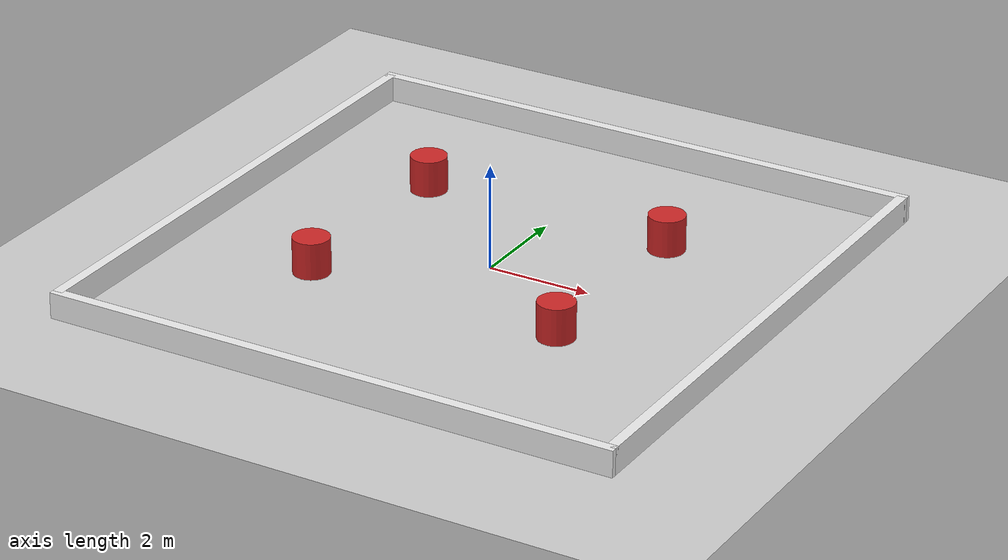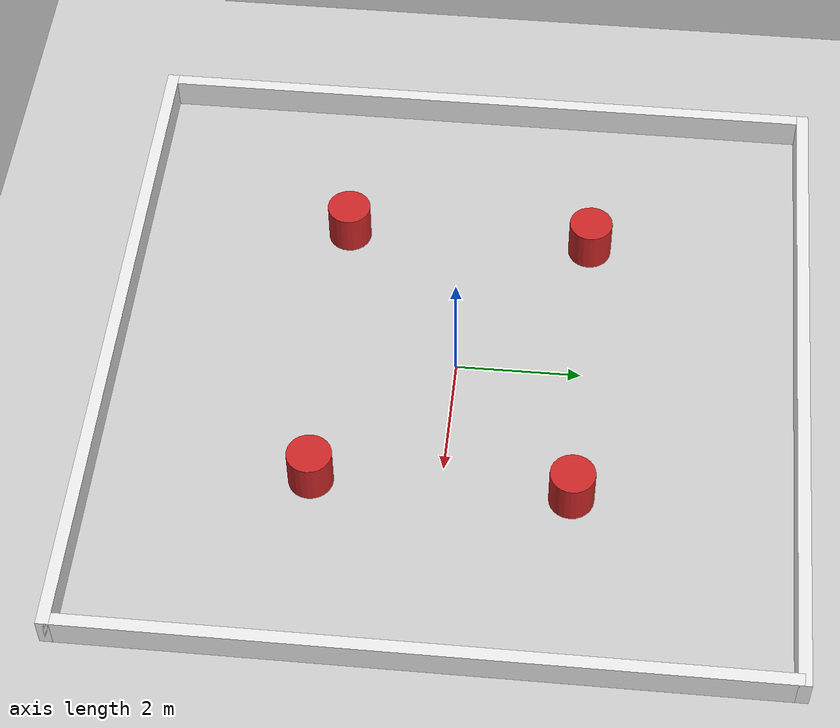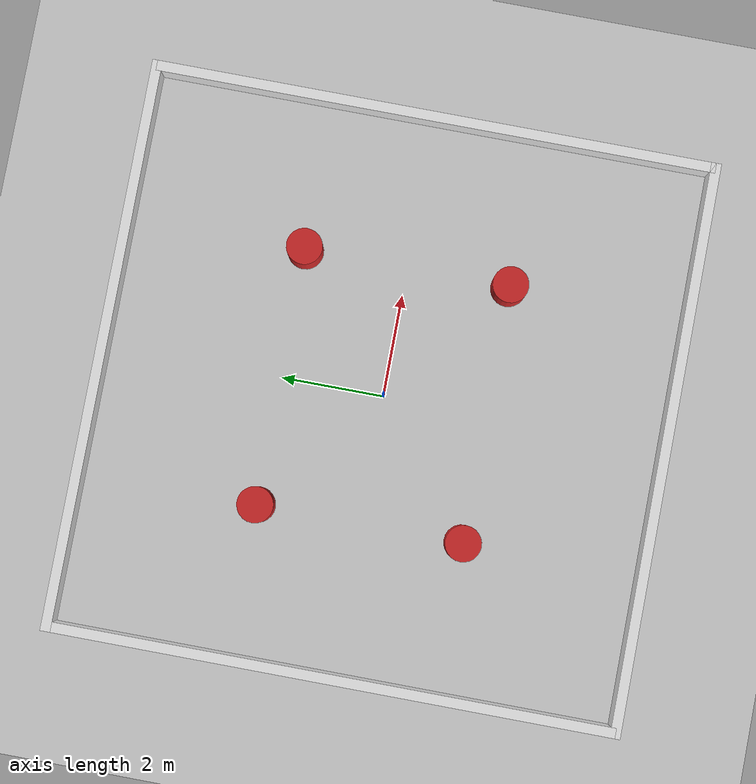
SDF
<?xml version="1.0"?>
<sdf version="1.6">
  <world name="default">
<plugin name="gazebo_ros_state" filename="libgazebo_ros_state.so">
      <ros>
        <namespace>/gazebo</namespace>
      </ros>
    </plugin>

    <include>
      <uri>model://sun</uri>
    </include>
    <include>
      <uri>model://ground_plane</uri>
    </include>
    <physics type="ode">
      <real_time_update_rate>100</real_time_update_rate>
      <max_step_size>0.01</max_step_size>
      <real_time_factor>0</real_time_factor>
    </physics>

    <model name="wall_top">
      <pose>0 5.5 0.25 0 0 0</pose>
      <static>true</static>
      <link name="link">
        <collision name="col">
          <geometry>
            <box>
              <size>11.2 0.2 0.5</size>
            </box>
          </geometry>
        </collision>
        <visual name="vis">
          <geometry>
            <box>
              <size>11.2 0.2 0.5</size>
            </box>
          </geometry>
          <material>
            <script>
              <uri>file://media/materials/scripts/gazebo.material</uri>
              <name>Gazebo/White</name>
            </script>
          </material>
        </visual>
      </link>
    </model>

    <model name="wall_bottom">
      <pose>0 -5.5 0.25 0 0 0</pose>
      <static>true</static>
      <link name="link">
        <collision name="col">
          <geometry>
            <box>
              <size>11.2 0.2 0.5</size>
            </box>
          </geometry>
        </collision>
        <visual name="vis">
          <geometry>
            <box>
              <size>11.2 0.2 0.5</size>
            </box>
          </geometry>
          <material>
            <script>
              <uri>file://media/materials/scripts/gazebo.material</uri>
              <name>Gazebo/White</name>
            </script>
          </material>
        </visual>
      </link>
    </model>

    <model name="wall_left">
      <pose>5.5 0 0.25 0 0 0</pose>
      <static>true</static>
      <link name="link">
        <collision name="col">
          <geometry>
            <box>
              <size>0.2 11.0 0.5</size>
            </box>
          </geometry>
        </collision>
        <visual name="vis">
          <geometry>
            <box>
              <size>0.2 11.0 0.5</size>
            </box>
          </geometry>
          <material>
            <script>
              <uri>file://media/materials/scripts/gazebo.material</uri>
              <name>Gazebo/White</name>
            </script>
          </material>
        </visual>
      </link>
    </model>

    <model name="wall_right">
      <pose>-5.5 0 0.25 0 0 0</pose>
      <static>true</static>
      <link name="link">
        <collision name="col">
          <geometry>
            <box>
              <size>0.2 11.0 0.5</size>
            </box>
          </geometry>
        </collision>
        <visual name="vis">
          <geometry>
            <box>
              <size>0.2 11.0 0.5</size>
            </box>
          </geometry>
          <material>
            <script>
              <uri>file://media/materials/scripts/gazebo.material</uri>
              <name>Gazebo/White</name>
            </script>
          </material>
        </visual>
      </link>
    </model>

    <model name="obs_1">
      <pose>2.5 2.0 0.5 0 0 0</pose>
      <static>true</static>
      <link name="link">
        <collision name="col">
          <geometry>
            <cylinder>
              <radius>0.35</radius>
              <length>0.7</length>
            </cylinder>
          </geometry>
        </collision>
        <visual name="vis">
          <geometry>
            <cylinder>
              <radius>0.35</radius>
              <length>0.7</length>
            </cylinder>
          </geometry>
          <material>
            <script>
              <uri>file://media/materials/scripts/gazebo.material</uri>
              <name>Gazebo/Red</name>
            </script>
          </material>
        </visual>
      </link>
    </model>

    <model name="obs_2">
      <pose>2.5 -2.0 0.5 0 0 0</pose>
      <static>true</static>
      <link name="link">
        <collision name="col">
          <geometry>
            <cylinder>
              <radius>0.35</radius>
              <length>0.7</length>
            </cylinder>
          </geometry>
        </collision>
        <visual name="vis">
          <geometry>
            <cylinder>
              <radius>0.35</radius>
              <length>0.7</length>
            </cylinder>
          </geometry>
          <material>
            <script>
              <uri>file://media/materials/scripts/gazebo.material</uri>
              <name>Gazebo/Red</name>
            </script>
          </material>
        </visual>
      </link>
    </model>

    <model name="obs_3">
      <pose>-2.5 2.0 0.5 0 0 0</pose>
      <static>true</static>
      <link name="link">
        <collision name="col">
          <geometry>
            <cylinder>
              <radius>0.35</radius>
              <length>0.7</length>
            </cylinder>
          </geometry>
        </collision>
        <visual name="vis">
          <geometry>
            <cylinder>
              <radius>0.35</radius>
              <length>0.7</length>
            </cylinder>
          </geometry>
          <material>
            <script>
              <uri>file://media/materials/scripts/gazebo.material</uri>
              <name>Gazebo/Red</name>
            </script>
          </material>
        </visual>
      </link>
    </model>

    <model name="obs_4">
      <pose>-2.5 -2.0 0.5 0 0 0</pose>
      <static>true</static>
      <link name="link">
        <collision name="col">
          <geometry>
            <cylinder>
              <radius>0.35</radius>
              <length>0.7</length>
            </cylinder>
          </geometry>
        </collision>
        <visual name="vis">
          <geometry>
            <cylinder>
              <radius>0.35</radius>
              <length>0.7</length>
            </cylinder>
          </geometry>
          <material>
            <script>
              <uri>file://media/materials/scripts/gazebo.material</uri>
              <name>Gazebo/Red</name>
            </script>
          </material>
        </visual>
      </link>
    </model>
  </world>
</sdf>
